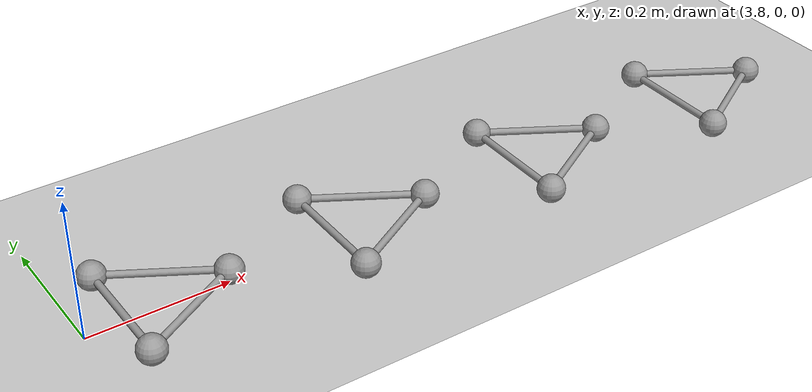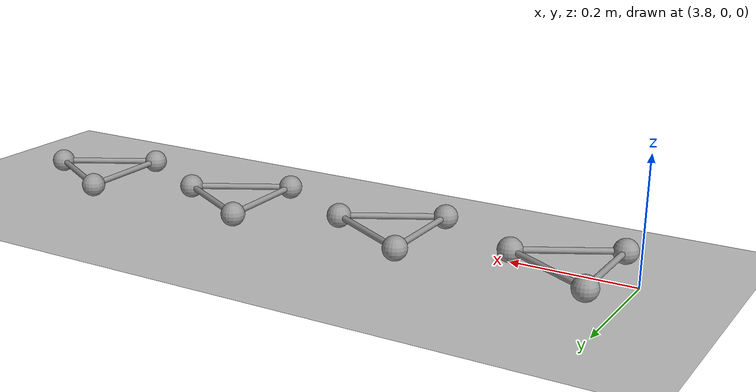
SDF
<sdf version="1.6">
 <world name="default">
  <include><uri>model://ground_plane</uri></include>
  <include><uri>model://sun</uri></include>
  <model name="triball_13">
   <pose>3.9 0 0 0 0 0</pose>
   <link name="link">
    <pose>0 0 0.02 0 0 0</pose>
    <inertial>
     <mass>0.060318578948924034</mass>
     <inertia>
      <ixx>0.000311243867376448</ixx>
      <iyy>0.000311243867376448</iyy>
      <izz>0.0006128367621210681</izz>
      <ixy>0.0</ixy>
      <ixz>0.0</ixz>
      <iyz>0.0</iyz>
     </inertia>
    </inertial>
    <sensor name="imu" type="imu"><always_on>true</always_on></sensor>
    <collision name="collision_a">
     <pose>0.09999999999999999 0 0  0 0 0</pose>
     <geometry><sphere><radius>0.02</radius></sphere></geometry>
     <surface><friction><ode><mu>0.9</mu><mu2>0.9</mu2><fdir1>1 0 0</fdir1></ode></friction></surface>
    </collision>
    <visual name="visual_a">
     <pose>0.09999999999999999 0 0  0 0 0</pose>
     <geometry><sphere><radius>0.02</radius></sphere></geometry>
     <material>
      <script><uri>file://media/materials/scripts/gazebo.material</uri><name>Gazebo/Grey</name></script>
     </material>
    </visual>
    <collision name="collision_a_to_b">
     <pose>0.024999999999999998 0.04330127018922193 0.0  -1.5707962969925737 -1.0471975511965974 1.047197525387029</pose>
     <geometry><cylinder><radius>0.005</radius><length>0.17320508075688773</length></cylinder></geometry>
     <surface><friction><ode><mu>0.9</mu><mu2>0.9</mu2></ode></friction></surface>
    </collision>
    <visual name="visual_a_to_b">
     <pose>0.024999999999999998 0.04330127018922193 0.0  -1.5707962969925737 -1.0471975511965974 1.047197525387029</pose>
     <geometry><cylinder><radius>0.005</radius><length>0.17320508075688773</length></cylinder></geometry>
     <material>
      <script><uri>file://media/materials/scripts/gazebo.material</uri><name>Gazebo/Grey</name></script>
     </material>
    </visual>
    <collision name="collision_a_to_c">
     <pose>0.024999999999999998 -0.04330127018922193 0.0  1.5707962969925737 -1.0471975511965974 -1.047197525387029</pose>
     <geometry><cylinder><radius>0.005</radius><length>0.17320508075688773</length></cylinder></geometry>
     <surface><friction><ode><mu>0.9</mu><mu2>0.9</mu2></ode></friction></surface>
    </collision>
    <visual name="visual_a_to_c">
     <pose>0.024999999999999998 -0.04330127018922193 0.0  1.5707962969925737 -1.0471975511965974 -1.047197525387029</pose>
     <geometry><cylinder><radius>0.005</radius><length>0.17320508075688773</length></cylinder></geometry>
     <material>
      <script><uri>file://media/materials/scripts/gazebo.material</uri><name>Gazebo/Grey</name></script>
     </material>
    </visual>
    <collision name="collision_b">
     <pose>-0.049999999999999996 0.08660254037844387 0  0 0 0</pose>
     <geometry><sphere><radius>0.02</radius></sphere></geometry>
     <surface><friction><ode><mu>0.9</mu><mu2>0.9</mu2><fdir1>1 0 0</fdir1></ode></friction></surface>
    </collision>
    <visual name="visual_b">
     <pose>-0.049999999999999996 0.08660254037844387 0  0 0 0</pose>
     <geometry><sphere><radius>0.02</radius></sphere></geometry>
     <material>
      <script><uri>file://media/materials/scripts/gazebo.material</uri><name>Gazebo/Grey</name></script>
     </material>
    </visual>
    <collision name="collision_b_to_c">
     <pose>-0.049999999999999996 0.0 0.0  1.5707963267948963 -0.0 0.0</pose>
     <geometry><cylinder><radius>0.005</radius><length>0.17320508075688773</length></cylinder></geometry>
     <surface><friction><ode><mu>0.9</mu><mu2>0.9</mu2></ode></friction></surface>
    </collision>
    <visual name="visual_b_to_c">
     <pose>-0.049999999999999996 0.0 0.0  1.5707963267948963 -0.0 0.0</pose>
     <geometry><cylinder><radius>0.005</radius><length>0.17320508075688773</length></cylinder></geometry>
     <material>
      <script><uri>file://media/materials/scripts/gazebo.material</uri><name>Gazebo/Grey</name></script>
     </material>
    </visual>
    <collision name="collision_c">
     <pose>-0.049999999999999996 -0.08660254037844387 0  0 0 0</pose>
     <geometry><sphere><radius>0.02</radius></sphere></geometry>
     <surface><friction><ode><mu>0.9</mu><mu2>0.9</mu2><fdir1>1 0 0</fdir1></ode></friction></surface>
    </collision>
    <visual name="visual_c">
     <pose>-0.049999999999999996 -0.08660254037844387 0  0 0 0</pose>
     <geometry><sphere><radius>0.02</radius></sphere></geometry>
     <material>
      <script><uri>file://media/materials/scripts/gazebo.material</uri><name>Gazebo/Grey</name></script>
     </material>
    </visual>
   </link>
   <plugin name="triball_13" filename="libInitialVelocityPlugin.so">
    <linear>0 15 0</linear>
    <angular>0 0 -28.125</angular>
   </plugin>
  </model>
  <model name="triball_14">
   <pose>4.2 0 0 0 0 0</pose>
   <link name="link">
    <pose>0 0 0.02 0 0 0</pose>
    <inertial>
     <mass>0.060318578948924034</mass>
     <inertia>
      <ixx>0.000311243867376448</ixx>
      <iyy>0.000311243867376448</iyy>
      <izz>0.0006128367621210681</izz>
      <ixy>0.0</ixy>
      <ixz>0.0</ixz>
      <iyz>0.0</iyz>
     </inertia>
    </inertial>
    <sensor name="imu" type="imu"><always_on>true</always_on></sensor>
    <collision name="collision_a">
     <pose>0.09999999999999999 0 0  0 0 0</pose>
     <geometry><sphere><radius>0.02</radius></sphere></geometry>
     <surface><friction><ode><mu>0.9</mu><mu2>0.9</mu2><fdir1>1 0 0</fdir1></ode></friction></surface>
    </collision>
    <visual name="visual_a">
     <pose>0.09999999999999999 0 0  0 0 0</pose>
     <geometry><sphere><radius>0.02</radius></sphere></geometry>
     <material>
      <script><uri>file://media/materials/scripts/gazebo.material</uri><name>Gazebo/Grey</name></script>
     </material>
    </visual>
    <collision name="collision_a_to_b">
     <pose>0.024999999999999998 0.04330127018922193 0.0  -1.5707962969925737 -1.0471975511965974 1.047197525387029</pose>
     <geometry><cylinder><radius>0.005</radius><length>0.17320508075688773</length></cylinder></geometry>
     <surface><friction><ode><mu>0.9</mu><mu2>0.9</mu2></ode></friction></surface>
    </collision>
    <visual name="visual_a_to_b">
     <pose>0.024999999999999998 0.04330127018922193 0.0  -1.5707962969925737 -1.0471975511965974 1.047197525387029</pose>
     <geometry><cylinder><radius>0.005</radius><length>0.17320508075688773</length></cylinder></geometry>
     <material>
      <script><uri>file://media/materials/scripts/gazebo.material</uri><name>Gazebo/Grey</name></script>
     </material>
    </visual>
    <collision name="collision_a_to_c">
     <pose>0.024999999999999998 -0.04330127018922193 0.0  1.5707962969925737 -1.0471975511965974 -1.047197525387029</pose>
     <geometry><cylinder><radius>0.005</radius><length>0.17320508075688773</length></cylinder></geometry>
     <surface><friction><ode><mu>0.9</mu><mu2>0.9</mu2></ode></friction></surface>
    </collision>
    <visual name="visual_a_to_c">
     <pose>0.024999999999999998 -0.04330127018922193 0.0  1.5707962969925737 -1.0471975511965974 -1.047197525387029</pose>
     <geometry><cylinder><radius>0.005</radius><length>0.17320508075688773</length></cylinder></geometry>
     <material>
      <script><uri>file://media/materials/scripts/gazebo.material</uri><name>Gazebo/Grey</name></script>
     </material>
    </visual>
    <collision name="collision_b">
     <pose>-0.049999999999999996 0.08660254037844387 0  0 0 0</pose>
     <geometry><sphere><radius>0.02</radius></sphere></geometry>
     <surface><friction><ode><mu>0.9</mu><mu2>0.9</mu2><fdir1>1 0 0</fdir1></ode></friction></surface>
    </collision>
    <visual name="visual_b">
     <pose>-0.049999999999999996 0.08660254037844387 0  0 0 0</pose>
     <geometry><sphere><radius>0.02</radius></sphere></geometry>
     <material>
      <script><uri>file://media/materials/scripts/gazebo.material</uri><name>Gazebo/Grey</name></script>
     </material>
    </visual>
    <collision name="collision_b_to_c">
     <pose>-0.049999999999999996 0.0 0.0  1.5707963267948963 -0.0 0.0</pose>
     <geometry><cylinder><radius>0.005</radius><length>0.17320508075688773</length></cylinder></geometry>
     <surface><friction><ode><mu>0.9</mu><mu2>0.9</mu2></ode></friction></surface>
    </collision>
    <visual name="visual_b_to_c">
     <pose>-0.049999999999999996 0.0 0.0  1.5707963267948963 -0.0 0.0</pose>
     <geometry><cylinder><radius>0.005</radius><length>0.17320508075688773</length></cylinder></geometry>
     <material>
      <script><uri>file://media/materials/scripts/gazebo.material</uri><name>Gazebo/Grey</name></script>
     </material>
    </visual>
    <collision name="collision_c">
     <pose>-0.049999999999999996 -0.08660254037844387 0  0 0 0</pose>
     <geometry><sphere><radius>0.02</radius></sphere></geometry>
     <surface><friction><ode><mu>0.9</mu><mu2>0.9</mu2><fdir1>1 0 0</fdir1></ode></friction></surface>
    </collision>
    <visual name="visual_c">
     <pose>-0.049999999999999996 -0.08660254037844387 0  0 0 0</pose>
     <geometry><sphere><radius>0.02</radius></sphere></geometry>
     <material>
      <script><uri>file://media/materials/scripts/gazebo.material</uri><name>Gazebo/Grey</name></script>
     </material>
    </visual>
   </link>
   <plugin name="triball_14" filename="libInitialVelocityPlugin.so">
    <linear>0 15 0</linear>
    <angular>0 0 -18.75</angular>
   </plugin>
  </model>
  <model name="triball_15">
   <pose>4.5 0 0 0 0 0</pose>
   <link name="link">
    <pose>0 0 0.02 0 0 0</pose>
    <inertial>
     <mass>0.060318578948924034</mass>
     <inertia>
      <ixx>0.000311243867376448</ixx>
      <iyy>0.000311243867376448</iyy>
      <izz>0.0006128367621210681</izz>
      <ixy>0.0</ixy>
      <ixz>0.0</ixz>
      <iyz>0.0</iyz>
     </inertia>
    </inertial>
    <sensor name="imu" type="imu"><always_on>true</always_on></sensor>
    <collision name="collision_a">
     <pose>0.09999999999999999 0 0  0 0 0</pose>
     <geometry><sphere><radius>0.02</radius></sphere></geometry>
     <surface><friction><ode><mu>0.9</mu><mu2>0.9</mu2><fdir1>1 0 0</fdir1></ode></friction></surface>
    </collision>
    <visual name="visual_a">
     <pose>0.09999999999999999 0 0  0 0 0</pose>
     <geometry><sphere><radius>0.02</radius></sphere></geometry>
     <material>
      <script><uri>file://media/materials/scripts/gazebo.material</uri><name>Gazebo/Grey</name></script>
     </material>
    </visual>
    <collision name="collision_a_to_b">
     <pose>0.024999999999999998 0.04330127018922193 0.0  -1.5707962969925737 -1.0471975511965974 1.047197525387029</pose>
     <geometry><cylinder><radius>0.005</radius><length>0.17320508075688773</length></cylinder></geometry>
     <surface><friction><ode><mu>0.9</mu><mu2>0.9</mu2></ode></friction></surface>
    </collision>
    <visual name="visual_a_to_b">
     <pose>0.024999999999999998 0.04330127018922193 0.0  -1.5707962969925737 -1.0471975511965974 1.047197525387029</pose>
     <geometry><cylinder><radius>0.005</radius><length>0.17320508075688773</length></cylinder></geometry>
     <material>
      <script><uri>file://media/materials/scripts/gazebo.material</uri><name>Gazebo/Grey</name></script>
     </material>
    </visual>
    <collision name="collision_a_to_c">
     <pose>0.024999999999999998 -0.04330127018922193 0.0  1.5707962969925737 -1.0471975511965974 -1.047197525387029</pose>
     <geometry><cylinder><radius>0.005</radius><length>0.17320508075688773</length></cylinder></geometry>
     <surface><friction><ode><mu>0.9</mu><mu2>0.9</mu2></ode></friction></surface>
    </collision>
    <visual name="visual_a_to_c">
     <pose>0.024999999999999998 -0.04330127018922193 0.0  1.5707962969925737 -1.0471975511965974 -1.047197525387029</pose>
     <geometry><cylinder><radius>0.005</radius><length>0.17320508075688773</length></cylinder></geometry>
     <material>
      <script><uri>file://media/materials/scripts/gazebo.material</uri><name>Gazebo/Grey</name></script>
     </material>
    </visual>
    <collision name="collision_b">
     <pose>-0.049999999999999996 0.08660254037844387 0  0 0 0</pose>
     <geometry><sphere><radius>0.02</radius></sphere></geometry>
     <surface><friction><ode><mu>0.9</mu><mu2>0.9</mu2><fdir1>1 0 0</fdir1></ode></friction></surface>
    </collision>
    <visual name="visual_b">
     <pose>-0.049999999999999996 0.08660254037844387 0  0 0 0</pose>
     <geometry><sphere><radius>0.02</radius></sphere></geometry>
     <material>
      <script><uri>file://media/materials/scripts/gazebo.material</uri><name>Gazebo/Grey</name></script>
     </material>
    </visual>
    <collision name="collision_b_to_c">
     <pose>-0.049999999999999996 0.0 0.0  1.5707963267948963 -0.0 0.0</pose>
     <geometry><cylinder><radius>0.005</radius><length>0.17320508075688773</length></cylinder></geometry>
     <surface><friction><ode><mu>0.9</mu><mu2>0.9</mu2></ode></friction></surface>
    </collision>
    <visual name="visual_b_to_c">
     <pose>-0.049999999999999996 0.0 0.0  1.5707963267948963 -0.0 0.0</pose>
     <geometry><cylinder><radius>0.005</radius><length>0.17320508075688773</length></cylinder></geometry>
     <material>
      <script><uri>file://media/materials/scripts/gazebo.material</uri><name>Gazebo/Grey</name></script>
     </material>
    </visual>
    <collision name="collision_c">
     <pose>-0.049999999999999996 -0.08660254037844387 0  0 0 0</pose>
     <geometry><sphere><radius>0.02</radius></sphere></geometry>
     <surface><friction><ode><mu>0.9</mu><mu2>0.9</mu2><fdir1>1 0 0</fdir1></ode></friction></surface>
    </collision>
    <visual name="visual_c">
     <pose>-0.049999999999999996 -0.08660254037844387 0  0 0 0</pose>
     <geometry><sphere><radius>0.02</radius></sphere></geometry>
     <material>
      <script><uri>file://media/materials/scripts/gazebo.material</uri><name>Gazebo/Grey</name></script>
     </material>
    </visual>
   </link>
   <plugin name="triball_15" filename="libInitialVelocityPlugin.so">
    <linear>0 15 0</linear>
    <angular>0 0 -9.375</angular>
   </plugin>
  </model>
  <model name="triball_16">
   <pose>4.8 0 0 0 0 0</pose>
   <link name="link">
    <pose>0 0 0.02 0 0 0</pose>
    <inertial>
     <mass>0.060318578948924034</mass>
     <inertia>
      <ixx>0.000311243867376448</ixx>
      <iyy>0.000311243867376448</iyy>
      <izz>0.0006128367621210681</izz>
      <ixy>0.0</ixy>
      <ixz>0.0</ixz>
      <iyz>0.0</iyz>
     </inertia>
    </inertial>
    <sensor name="imu" type="imu"><always_on>true</always_on></sensor>
    <collision name="collision_a">
     <pose>0.09999999999999999 0 0  0 0 0</pose>
     <geometry><sphere><radius>0.02</radius></sphere></geometry>
     <surface><friction><ode><mu>0.9</mu><mu2>0.9</mu2><fdir1>1 0 0</fdir1></ode></friction></surface>
    </collision>
    <visual name="visual_a">
     <pose>0.09999999999999999 0 0  0 0 0</pose>
     <geometry><sphere><radius>0.02</radius></sphere></geometry>
     <material>
      <script><uri>file://media/materials/scripts/gazebo.material</uri><name>Gazebo/Grey</name></script>
     </material>
    </visual>
    <collision name="collision_a_to_b">
     <pose>0.024999999999999998 0.04330127018922193 0.0  -1.5707962969925737 -1.0471975511965974 1.047197525387029</pose>
     <geometry><cylinder><radius>0.005</radius><length>0.17320508075688773</length></cylinder></geometry>
     <surface><friction><ode><mu>0.9</mu><mu2>0.9</mu2></ode></friction></surface>
    </collision>
    <visual name="visual_a_to_b">
     <pose>0.024999999999999998 0.04330127018922193 0.0  -1.5707962969925737 -1.0471975511965974 1.047197525387029</pose>
     <geometry><cylinder><radius>0.005</radius><length>0.17320508075688773</length></cylinder></geometry>
     <material>
      <script><uri>file://media/materials/scripts/gazebo.material</uri><name>Gazebo/Grey</name></script>
     </material>
    </visual>
    <collision name="collision_a_to_c">
     <pose>0.024999999999999998 -0.04330127018922193 0.0  1.5707962969925737 -1.0471975511965974 -1.047197525387029</pose>
     <geometry><cylinder><radius>0.005</radius><length>0.17320508075688773</length></cylinder></geometry>
     <surface><friction><ode><mu>0.9</mu><mu2>0.9</mu2></ode></friction></surface>
    </collision>
    <visual name="visual_a_to_c">
     <pose>0.024999999999999998 -0.04330127018922193 0.0  1.5707962969925737 -1.0471975511965974 -1.047197525387029</pose>
     <geometry><cylinder><radius>0.005</radius><length>0.17320508075688773</length></cylinder></geometry>
     <material>
      <script><uri>file://media/materials/scripts/gazebo.material</uri><name>Gazebo/Grey</name></script>
     </material>
    </visual>
    <collision name="collision_b">
     <pose>-0.049999999999999996 0.08660254037844387 0  0 0 0</pose>
     <geometry><sphere><radius>0.02</radius></sphere></geometry>
     <surface><friction><ode><mu>0.9</mu><mu2>0.9</mu2><fdir1>1 0 0</fdir1></ode></friction></surface>
    </collision>
    <visual name="visual_b">
     <pose>-0.049999999999999996 0.08660254037844387 0  0 0 0</pose>
     <geometry><sphere><radius>0.02</radius></sphere></geometry>
     <material>
      <script><uri>file://media/materials/scripts/gazebo.material</uri><name>Gazebo/Grey</name></script>
     </material>
    </visual>
    <collision name="collision_b_to_c">
     <pose>-0.049999999999999996 0.0 0.0  1.5707963267948963 -0.0 0.0</pose>
     <geometry><cylinder><radius>0.005</radius><length>0.17320508075688773</length></cylinder></geometry>
     <surface><friction><ode><mu>0.9</mu><mu2>0.9</mu2></ode></friction></surface>
    </collision>
    <visual name="visual_b_to_c">
     <pose>-0.049999999999999996 0.0 0.0  1.5707963267948963 -0.0 0.0</pose>
     <geometry><cylinder><radius>0.005</radius><length>0.17320508075688773</length></cylinder></geometry>
     <material>
      <script><uri>file://media/materials/scripts/gazebo.material</uri><name>Gazebo/Grey</name></script>
     </material>
    </visual>
    <collision name="collision_c">
     <pose>-0.049999999999999996 -0.08660254037844387 0  0 0 0</pose>
     <geometry><sphere><radius>0.02</radius></sphere></geometry>
     <surface><friction><ode><mu>0.9</mu><mu2>0.9</mu2><fdir1>1 0 0</fdir1></ode></friction></surface>
    </collision>
    <visual name="visual_c">
     <pose>-0.049999999999999996 -0.08660254037844387 0  0 0 0</pose>
     <geometry><sphere><radius>0.02</radius></sphere></geometry>
     <material>
      <script><uri>file://media/materials/scripts/gazebo.material</uri><name>Gazebo/Grey</name></script>
     </material>
    </visual>
   </link>
   <plugin name="triball_16" filename="libInitialVelocityPlugin.so">
    <linear>0 15 0</linear>
    <angular>0 0 0.0</angular>
   </plugin>
  </model>
 </world>
</sdf>
